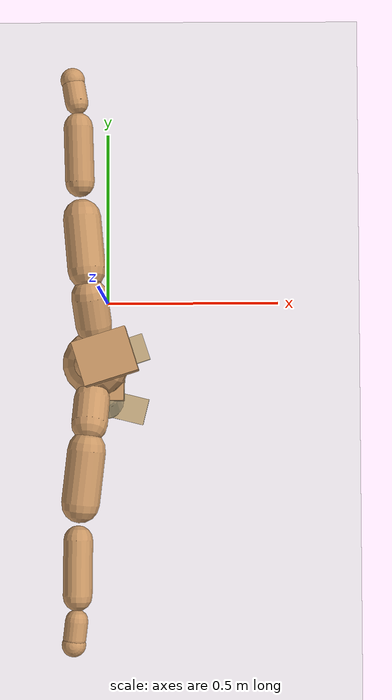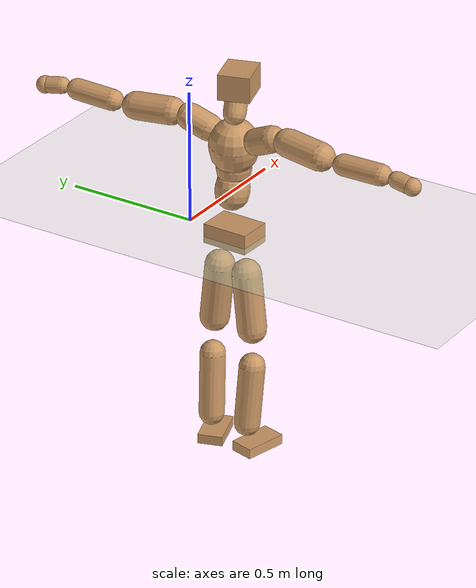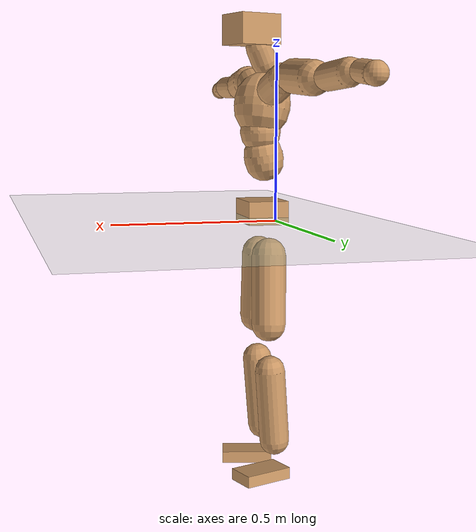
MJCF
<mujoco model="humanoid">
  <compiler coordinate="local" angle="radian"/>
  <default>
    <joint damping="0.0" armature="0.01" stiffness="0.0" limited="true"/>
    <geom conaffinity="1" condim="3" contype="7" margin="0.001" rgba="0.8 0.6 .4 1"/>
  </default>
  <asset>
    <texture type="skybox" builtin="gradient" rgb1=".4 .5 .6" rgb2="0 0 0" width="100" height="100"/>
    <texture builtin="flat" height="1278" mark="cross" markrgb="1 1 1" name="texgeom" random="0.01" rgb1="0.8 0.6 0.4" rgb2="0.8 0.6 0.4" type="cube" width="127"/>
    <texture builtin="checker" height="100" name="texplane" rgb1="0 0 0" rgb2="0.8 0.8 0.8" type="2d" width="100"/>
    <material name="MatPlane" reflectance="0.5" shininess="1" specular="1" texrepeat="60 60" texture="texplane"/>
    <material name="geom" texture="texgeom" texuniform="true"/>
  </asset>
  <worldbody>
    <light cutoff="100" diffuse="1 1 1" dir="-0 0 -1.3" directional="true" exponent="1" pos="0 0 1.3" specular=".1 .1 .1"/>
    <geom conaffinity="1" condim="3" name="floor" pos="0 0 0" rgba="0.8 0.9 0.8 1" size="100 100 .2" type="plane" material="MatPlane"/>
    <body name="Pelvis" pos="-0.0049 -0.1975 0.0191">
      <freejoint name="Pelvis"/>
      <geom type="box" contype="1" conaffinity="1" density="500" pos="-0.0111 0.0003 -0.0075" size="0.064 0.0878 0.0371" quat="0.9999 0.0000 0.0000 -0.0133" name="Pelvis"/>
      <body name="L_Hip" pos="-0.0216 0.0468 -0.0708">
        <joint name="L_Hip_x" type="hinge" pos="0 0 0" axis="1 0 0" stiffness="800" damping="80" armature="0.02" range="-180.0000 180.0000"/>
        <joint name="L_Hip_y" type="hinge" pos="0 0 0" axis="0 1 0" stiffness="800" damping="80" armature="0.02" range="-180.0000 180.0000"/>
        <joint name="L_Hip_z" type="hinge" pos="0 0 0" axis="0 0 1" stiffness="800" damping="80" armature="0.02" range="-180.0000 180.0000"/>
        <geom type="capsule" contype="1" conaffinity="1" density="500" fromto="0.0025 0.0089 -0.0732 0.0098 0.0357 -0.2929" size="0.0549" name="L_Hip"/>
        <body name="L_Knee" pos="0.0123 0.0446 -0.3661">
          <joint name="L_Knee_x" type="hinge" pos="0 0 0" axis="1 0 0" stiffness="800" damping="80" armature="0.02" range="-180.0000 180.0000"/>
          <joint name="L_Knee_y" type="hinge" pos="0 0 0" axis="0 1 0" stiffness="800" damping="80" armature="0.02" range="-180.0000 180.0000"/>
          <joint name="L_Knee_z" type="hinge" pos="0 0 0" axis="0 0 1" stiffness="800" damping="80" armature="0.02" range="-180.0000 180.0000"/>
          <geom type="capsule" contype="1" conaffinity="1" density="500" fromto="-0.0060 -0.0023 -0.0777 -0.0241 -0.0092 -0.3108" size="0.0478" name="L_Knee"/>
          <body name="L_Ankle" pos="-0.0301 -0.0115 -0.3885">
            <joint name="L_Ankle_x" type="hinge" pos="0 0 0" axis="1 0 0" stiffness="800" damping="80" armature="0.02" range="-180.0000 180.0000"/>
            <joint name="L_Ankle_y" type="hinge" pos="0 0 0" axis="0 1 0" stiffness="800" damping="80" armature="0.02" range="-180.0000 180.0000"/>
            <joint name="L_Ankle_z" type="hinge" pos="0 0 0" axis="0 0 1" stiffness="800" damping="80" armature="0.02" range="-180.0000 180.0000"/>
            <geom type="box" contype="1" conaffinity="1" density="500" pos="0.0551 0.0183 -0.0269" size="0.0805 0.0467 0.0185" quat="0.9872 0.0000 0.0000 0.1592" name="L_Ankle"/>
            <body name="L_Toe" pos="0.1102 0.0365 -0.0538">
              <joint name="L_Toe_x" type="hinge" pos="0 0 0" axis="1 0 0" stiffness="500" damping="50" armature="0.02" range="-180.0000 180.0000"/>
              <joint name="L_Toe_y" type="hinge" pos="0 0 0" axis="0 1 0" stiffness="500" damping="50" armature="0.02" range="-180.0000 180.0000"/>
              <joint name="L_Toe_z" type="hinge" pos="0 0 0" axis="0 0 1" stiffness="500" damping="50" armature="0.02" range="-180.0000 180.0000"/>
              <geom type="box" contype="1" conaffinity="1" density="500" pos="0.0000 0.0000 0.0262" size="0.001 0.0024 0.0009" quat="0.9864 0.0000 0.0000 0.1645" name="L_Toe"/>
            </body>
          </body>
        </body>
      </body>
      <body name="R_Hip" pos="-0.0185 -0.0487 -0.0782">
        <joint name="R_Hip_x" type="hinge" pos="0 0 0" axis="1 0 0" stiffness="800" damping="80" armature="0.02" range="-180.0000 180.0000"/>
        <joint name="R_Hip_y" type="hinge" pos="0 0 0" axis="0 1 0" stiffness="800" damping="80" armature="0.02" range="-180.0000 180.0000"/>
        <joint name="R_Hip_z" type="hinge" pos="0 0 0" axis="0 0 1" stiffness="800" damping="80" armature="0.02" range="-180.0000 180.0000"/>
        <geom type="capsule" contype="1" conaffinity="1" density="500" fromto="-0.0001 -0.0080 -0.0718 -0.0003 -0.0319 -0.2873" size="0.0539" name="R_Hip"/>
        <body name="R_Knee" pos="-0.0004 -0.0399 -0.3591">
          <joint name="R_Knee_x" type="hinge" pos="0 0 0" axis="1 0 0" stiffness="800" damping="80" armature="0.02" range="-180.0000 180.0000"/>
          <joint name="R_Knee_y" type="hinge" pos="0 0 0" axis="0 1 0" stiffness="800" damping="80" armature="0.02" range="-180.0000 180.0000"/>
          <joint name="R_Knee_z" type="hinge" pos="0 0 0" axis="0 0 1" stiffness="800" damping="80" armature="0.02" range="-180.0000 180.0000"/>
          <geom type="capsule" contype="1" conaffinity="1" density="500" fromto="-0.0054 0.0035 -0.0761 -0.0217 0.0138 -0.3045" size="0.0481" name="R_Knee"/>
          <body name="R_Ankle" pos="-0.0271 0.0173 -0.3806">
            <joint name="R_Ankle_x" type="hinge" pos="0 0 0" axis="1 0 0" stiffness="800" damping="80" armature="0.02" range="-180.0000 180.0000"/>
            <joint name="R_Ankle_y" type="hinge" pos="0 0 0" axis="0 1 0" stiffness="800" damping="80" armature="0.02" range="-180.0000 180.0000"/>
            <joint name="R_Ankle_z" type="hinge" pos="0 0 0" axis="0 0 1" stiffness="800" damping="80" armature="0.02" range="-180.0000 180.0000"/>
            <geom type="box" contype="1" conaffinity="1" density="500" pos="0.0586 -0.0145 -0.0282" size="0.0814 0.0452 0.0192" quat="0.9927 0.0000 0.0000 -0.1208" name="R_Ankle"/>
            <body name="R_Toe" pos="0.1172 -0.029 -0.0564">
              <joint name="R_Toe_x" type="hinge" pos="0 0 0" axis="1 0 0" stiffness="500" damping="50" armature="0.02" range="-180.0000 180.0000"/>
              <joint name="R_Toe_y" type="hinge" pos="0 0 0" axis="0 1 0" stiffness="500" damping="50" armature="0.02" range="-180.0000 180.0000"/>
              <joint name="R_Toe_z" type="hinge" pos="0 0 0" axis="0 0 1" stiffness="500" damping="50" armature="0.02" range="-180.0000 180.0000"/>
              <geom type="box" contype="1" conaffinity="1" density="500" pos="0.0000 0.0000 0.0293" size="0.0009 0.0023 0.001" quat="0.9938 0.0000 0.0000 -0.1110" name="R_Toe"/>
            </body>
          </body>
        </body>
      </body>
      <body name="Torso" pos="-0.0265 0.0037 0.1037">
        <joint name="Torso_x" type="hinge" pos="0 0 0" axis="1 0 0" stiffness="1000" damping="100" armature="0.02" range="-180.0000 180.0000"/>
        <joint name="Torso_y" type="hinge" pos="0 0 0" axis="0 1 0" stiffness="1000" damping="100" armature="0.02" range="-180.0000 180.0000"/>
        <joint name="Torso_z" type="hinge" pos="0 0 0" axis="0 0 1" stiffness="1000" damping="100" armature="0.02" range="-180.0000 180.0000"/>
        <geom type="capsule" contype="1" conaffinity="1" density="500" fromto="0.0133 0.0020 0.0717 0.0089 0.0013 0.0478" size="0.0625" name="Torso"/>
        <body name="Spine" pos="0.0222 0.0034 0.1195">
          <joint name="Spine_x" type="hinge" pos="0 0 0" axis="1 0 0" stiffness="1000" damping="100" armature="0.02" range="-180.0000 180.0000"/>
          <joint name="Spine_y" type="hinge" pos="0 0 0" axis="0 1 0" stiffness="1000" damping="100" armature="0.02" range="-180.0000 180.0000"/>
          <joint name="Spine_z" type="hinge" pos="0 0 0" axis="0 0 1" stiffness="1000" damping="100" armature="0.02" range="-180.0000 180.0000"/>
          <geom type="capsule" contype="1" conaffinity="1" density="500" fromto="0.0013 -0.0000 0.0285 0.0009 -0.0000 0.0190" size="0.0644" name="Spine"/>
          <body name="Chest" pos="0.0022 0 0.0475">
            <joint name="Chest_x" type="hinge" pos="0 0 0" axis="1 0 0" stiffness="1000" damping="100" armature="0.02" range="-180.0000 180.0000"/>
            <joint name="Chest_y" type="hinge" pos="0 0 0" axis="0 1 0" stiffness="1000" damping="100" armature="0.02" range="-180.0000 180.0000"/>
            <joint name="Chest_z" type="hinge" pos="0 0 0" axis="0 0 1" stiffness="1000" damping="100" armature="0.02" range="-180.0000 180.0000"/>
            <geom type="capsule" contype="1" conaffinity="1" density="500" fromto="-0.0098 -0.0051 0.0738 -0.0065 -0.0034 0.0492" size="0.0895" name="Chest"/>
            <body name="Neck" pos="-0.0249 -0.0153 0.1765">
              <joint name="Neck_x" type="hinge" pos="0 0 0" axis="1 0 0" stiffness="500" damping="50" armature="0.02" range="-180.0000 180.0000"/>
              <joint name="Neck_y" type="hinge" pos="0 0 0" axis="0 1 0" stiffness="500" damping="50" armature="0.02" range="-180.0000 180.0000"/>
              <joint name="Neck_z" type="hinge" pos="0 0 0" axis="0 0 1" stiffness="500" damping="50" armature="0.02" range="-180.0000 180.0000"/>
              <geom type="capsule" contype="1" conaffinity="1" density="500" fromto="0.0071 0.0020 0.0153 0.0285 0.0078 0.0614" size="0.0411" name="Neck"/>
              <body name="Head" pos="0.0357 0.0098 0.0767">
                <joint name="Head_x" type="hinge" pos="0 0 0" axis="1 0 0" stiffness="500" damping="50" armature="0.02" range="-180.0000 180.0000"/>
                <joint name="Head_y" type="hinge" pos="0 0 0" axis="0 1 0" stiffness="500" damping="50" armature="0.02" range="-180.0000 180.0000"/>
                <joint name="Head_z" type="hinge" pos="0 0 0" axis="0 0 1" stiffness="500" damping="50" armature="0.02" range="-180.0000 180.0000"/>
                <geom type="box" contype="1" conaffinity="1" density="500" pos="0.0188 0.0059 0.0394" size="0.0716 0.0587 0.0477" quat="0.9885 0.0000 0.0000 0.1512" name="Head"/>
              </body>
            </body>
            <body name="L_Thorax" pos="-0.0084 0.0715 0.0973">
              <joint name="L_Thorax_x" type="hinge" pos="0 0 0" axis="1 0 0" stiffness="500" damping="50" armature="0.02" range="-180.0000 180.0000"/>
              <joint name="L_Thorax_y" type="hinge" pos="0 0 0" axis="0 1 0" stiffness="500" damping="50" armature="0.02" range="-180.0000 180.0000"/>
              <joint name="L_Thorax_z" type="hinge" pos="0 0 0" axis="0 0 1" stiffness="500" damping="50" armature="0.02" range="-180.0000 180.0000"/>
              <geom type="capsule" contype="1" conaffinity="1" density="500" fromto="-0.0032 0.0248 0.0095 -0.0128 0.0993 0.0379" size="0.0494" name="L_Thorax"/>
              <body name="L_Shoulder" pos="-0.0159 0.1241 0.0473">
                <joint name="L_Shoulder_x" type="hinge" pos="0 0 0" axis="1 0 0" stiffness="500" damping="50" armature="0.02" range="-720.0000 720.0000"/>
                <joint name="L_Shoulder_y" type="hinge" pos="0 0 0" axis="0 1 0" stiffness="500" damping="50" armature="0.02" range="-720.0000 720.0000"/>
                <joint name="L_Shoulder_z" type="hinge" pos="0 0 0" axis="0 0 1" stiffness="500" damping="50" armature="0.02" range="-720.0000 720.0000"/>
                <geom type="capsule" contype="1" conaffinity="1" density="500" fromto="-0.0044 0.0470 -0.0033 -0.0174 0.1879 -0.0132" size="0.0514" name="L_Shoulder"/>
                <body name="L_Elbow" pos="-0.0218 0.2349 -0.0165">
                  <joint name="L_Elbow_x" type="hinge" pos="0 0 0" axis="1 0 0" stiffness="500" damping="50" armature="0.02" range="-720.0000 720.0000"/>
                  <joint name="L_Elbow_y" type="hinge" pos="0 0 0" axis="0 1 0" stiffness="500" damping="50" armature="0.02" range="-720.0000 720.0000"/>
                  <joint name="L_Elbow_z" type="hinge" pos="0 0 0" axis="0 0 1" stiffness="500" damping="50" armature="0.02" range="-720.0000 720.0000"/>
                  <geom type="capsule" contype="1" conaffinity="1" density="500" fromto="-0.0014 0.0496 0.0022 -0.0054 0.1983 0.0090" size="0.0393" name="L_Elbow"/>
                  <body name="L_Wrist" pos="-0.0068 0.2479 0.0112">
                    <joint name="L_Wrist_x" type="hinge" pos="0 0 0" axis="1 0 0" stiffness="300" damping="30" armature="0.02" range="-180.0000 180.0000"/>
                    <joint name="L_Wrist_y" type="hinge" pos="0 0 0" axis="0 1 0" stiffness="300" damping="30" armature="0.02" range="-180.0000 180.0000"/>
                    <joint name="L_Wrist_z" type="hinge" pos="0 0 0" axis="0 0 1" stiffness="300" damping="30" armature="0.02" range="-180.0000 180.0000"/>
                    <geom type="capsule" contype="1" conaffinity="1" density="500" fromto="-0.0029 0.0161 -0.0020 -0.0115 0.0642 -0.0080" size="0.0311" name="L_Wrist"/>
                    <body name="L_Hand" pos="-0.0144 0.0803 -0.01">
                      <joint name="L_Hand_x" type="hinge" pos="0 0 0" axis="1 0 0" stiffness="300" damping="30" armature="0.02" range="-180.0000 180.0000"/>
                      <joint name="L_Hand_y" type="hinge" pos="0 0 0" axis="0 1 0" stiffness="300" damping="30" armature="0.02" range="-180.0000 180.0000"/>
                      <joint name="L_Hand_z" type="hinge" pos="0 0 0" axis="0 0 1" stiffness="300" damping="30" armature="0.02" range="-180.0000 180.0000"/>
                      <geom type="sphere" contype="1" conaffinity="1" density="500" size="0.0328" pos="0.0000 0.0000 0.0000" name="L_Hand"/>
                    </body>
                  </body>
                </body>
              </body>
            </body>
            <body name="R_Thorax" pos="-0.0156 -0.0817 0.0952">
              <joint name="R_Thorax_x" type="hinge" pos="0 0 0" axis="1 0 0" stiffness="500" damping="50" armature="0.02" range="-180.0000 180.0000"/>
              <joint name="R_Thorax_y" type="hinge" pos="0 0 0" axis="0 1 0" stiffness="500" damping="50" armature="0.02" range="-180.0000 180.0000"/>
              <joint name="R_Thorax_z" type="hinge" pos="0 0 0" axis="0 0 1" stiffness="500" damping="50" armature="0.02" range="-180.0000 180.0000"/>
              <geom type="capsule" contype="1" conaffinity="1" density="500" fromto="-0.0015 -0.0221 0.0099 -0.0060 -0.0886 0.0394" size="0.0488" name="R_Thorax"/>
              <body name="R_Shoulder" pos="-0.0075 -0.1107 0.0493">
                <joint name="R_Shoulder_x" type="hinge" pos="0 0 0" axis="1 0 0" stiffness="500" damping="50" armature="0.02" range="-720.0000 720.0000"/>
                <joint name="R_Shoulder_y" type="hinge" pos="0 0 0" axis="0 1 0" stiffness="500" damping="50" armature="0.02" range="-720.0000 720.0000"/>
                <joint name="R_Shoulder_z" type="hinge" pos="0 0 0" axis="0 0 1" stiffness="500" damping="50" armature="0.02" range="-720.0000 720.0000"/>
                <geom type="capsule" contype="1" conaffinity="1" density="500" fromto="-0.0056 -0.0474 -0.0032 -0.0225 -0.1896 -0.0127" size="0.0516" name="R_Shoulder"/>
                <body name="R_Elbow" pos="-0.0281 -0.237 -0.0158">
                  <joint name="R_Elbow_x" type="hinge" pos="0 0 0" axis="1 0 0" stiffness="500" damping="50" armature="0.02" range="-720.0000 720.0000"/>
                  <joint name="R_Elbow_y" type="hinge" pos="0 0 0" axis="0 1 0" stiffness="500" damping="50" armature="0.02" range="-720.0000 720.0000"/>
                  <joint name="R_Elbow_z" type="hinge" pos="0 0 0" axis="0 0 1" stiffness="500" damping="50" armature="0.02" range="-720.0000 720.0000"/>
                  <geom type="capsule" contype="1" conaffinity="1" density="500" fromto="-0.0005 -0.0494 0.0006 -0.0022 -0.1975 0.0025" size="0.0392" name="R_Elbow"/>
                  <body name="R_Wrist" pos="-0.0027 -0.2468 0.0031">
                    <joint name="R_Wrist_x" type="hinge" pos="0 0 0" axis="1 0 0" stiffness="300" damping="30" armature="0.02" range="-180.0000 180.0000"/>
                    <joint name="R_Wrist_y" type="hinge" pos="0 0 0" axis="0 1 0" stiffness="300" damping="30" armature="0.02" range="-180.0000 180.0000"/>
                    <joint name="R_Wrist_z" type="hinge" pos="0 0 0" axis="0 0 1" stiffness="300" damping="30" armature="0.02" range="-180.0000 180.0000"/>
                    <geom type="capsule" contype="1" conaffinity="1" density="500" fromto="-0.0019 -0.0160 -0.0016 -0.0076 -0.0638 -0.0062" size="0.0308" name="R_Wrist"/>
                    <body name="R_Hand" pos="-0.0095 -0.0798 -0.0078">
                      <joint name="R_Hand_x" type="hinge" pos="0 0 0" axis="1 0 0" stiffness="300" damping="30" armature="0.02" range="-180.0000 180.0000"/>
                      <joint name="R_Hand_y" type="hinge" pos="0 0 0" axis="0 1 0" stiffness="300" damping="30" armature="0.02" range="-180.0000 180.0000"/>
                      <joint name="R_Hand_z" type="hinge" pos="0 0 0" axis="0 0 1" stiffness="300" damping="30" armature="0.02" range="-180.0000 180.0000"/>
                      <geom type="sphere" contype="1" conaffinity="1" density="500" size="0.0323" pos="0.0000 0.0000 0.0000" name="R_Hand"/>
                    </body>
                  </body>
                </body>
              </body>
            </body>
          </body>
        </body>
      </body>
    </body>
  </worldbody>
  <actuator>
    <motor name="L_Hip_x" joint="L_Hip_x" gear="500"/>
    <motor name="L_Hip_y" joint="L_Hip_y" gear="500"/>
    <motor name="L_Hip_z" joint="L_Hip_z" gear="500"/>
    <motor name="L_Knee_x" joint="L_Knee_x" gear="500"/>
    <motor name="L_Knee_y" joint="L_Knee_y" gear="500"/>
    <motor name="L_Knee_z" joint="L_Knee_z" gear="500"/>
    <motor name="L_Ankle_x" joint="L_Ankle_x" gear="500"/>
    <motor name="L_Ankle_y" joint="L_Ankle_y" gear="500"/>
    <motor name="L_Ankle_z" joint="L_Ankle_z" gear="500"/>
    <motor name="L_Toe_x" joint="L_Toe_x" gear="500"/>
    <motor name="L_Toe_y" joint="L_Toe_y" gear="500"/>
    <motor name="L_Toe_z" joint="L_Toe_z" gear="500"/>
    <motor name="R_Hip_x" joint="R_Hip_x" gear="500"/>
    <motor name="R_Hip_y" joint="R_Hip_y" gear="500"/>
    <motor name="R_Hip_z" joint="R_Hip_z" gear="500"/>
    <motor name="R_Knee_x" joint="R_Knee_x" gear="500"/>
    <motor name="R_Knee_y" joint="R_Knee_y" gear="500"/>
    <motor name="R_Knee_z" joint="R_Knee_z" gear="500"/>
    <motor name="R_Ankle_x" joint="R_Ankle_x" gear="500"/>
    <motor name="R_Ankle_y" joint="R_Ankle_y" gear="500"/>
    <motor name="R_Ankle_z" joint="R_Ankle_z" gear="500"/>
    <motor name="R_Toe_x" joint="R_Toe_x" gear="500"/>
    <motor name="R_Toe_y" joint="R_Toe_y" gear="500"/>
    <motor name="R_Toe_z" joint="R_Toe_z" gear="500"/>
    <motor name="Torso_x" joint="Torso_x" gear="500"/>
    <motor name="Torso_y" joint="Torso_y" gear="500"/>
    <motor name="Torso_z" joint="Torso_z" gear="500"/>
    <motor name="Spine_x" joint="Spine_x" gear="500"/>
    <motor name="Spine_y" joint="Spine_y" gear="500"/>
    <motor name="Spine_z" joint="Spine_z" gear="500"/>
    <motor name="Chest_x" joint="Chest_x" gear="500"/>
    <motor name="Chest_y" joint="Chest_y" gear="500"/>
    <motor name="Chest_z" joint="Chest_z" gear="500"/>
    <motor name="Neck_x" joint="Neck_x" gear="500"/>
    <motor name="Neck_y" joint="Neck_y" gear="500"/>
    <motor name="Neck_z" joint="Neck_z" gear="500"/>
    <motor name="Head_x" joint="Head_x" gear="500"/>
    <motor name="Head_y" joint="Head_y" gear="500"/>
    <motor name="Head_z" joint="Head_z" gear="500"/>
    <motor name="L_Thorax_x" joint="L_Thorax_x" gear="500"/>
    <motor name="L_Thorax_y" joint="L_Thorax_y" gear="500"/>
    <motor name="L_Thorax_z" joint="L_Thorax_z" gear="500"/>
    <motor name="L_Shoulder_x" joint="L_Shoulder_x" gear="500"/>
    <motor name="L_Shoulder_y" joint="L_Shoulder_y" gear="500"/>
    <motor name="L_Shoulder_z" joint="L_Shoulder_z" gear="500"/>
    <motor name="L_Elbow_x" joint="L_Elbow_x" gear="500"/>
    <motor name="L_Elbow_y" joint="L_Elbow_y" gear="500"/>
    <motor name="L_Elbow_z" joint="L_Elbow_z" gear="500"/>
    <motor name="L_Wrist_x" joint="L_Wrist_x" gear="500"/>
    <motor name="L_Wrist_y" joint="L_Wrist_y" gear="500"/>
    <motor name="L_Wrist_z" joint="L_Wrist_z" gear="500"/>
    <motor name="L_Hand_x" joint="L_Hand_x" gear="500"/>
    <motor name="L_Hand_y" joint="L_Hand_y" gear="500"/>
    <motor name="L_Hand_z" joint="L_Hand_z" gear="500"/>
    <motor name="R_Thorax_x" joint="R_Thorax_x" gear="500"/>
    <motor name="R_Thorax_y" joint="R_Thorax_y" gear="500"/>
    <motor name="R_Thorax_z" joint="R_Thorax_z" gear="500"/>
    <motor name="R_Shoulder_x" joint="R_Shoulder_x" gear="500"/>
    <motor name="R_Shoulder_y" joint="R_Shoulder_y" gear="500"/>
    <motor name="R_Shoulder_z" joint="R_Shoulder_z" gear="500"/>
    <motor name="R_Elbow_x" joint="R_Elbow_x" gear="500"/>
    <motor name="R_Elbow_y" joint="R_Elbow_y" gear="500"/>
    <motor name="R_Elbow_z" joint="R_Elbow_z" gear="500"/>
    <motor name="R_Wrist_x" joint="R_Wrist_x" gear="500"/>
    <motor name="R_Wrist_y" joint="R_Wrist_y" gear="500"/>
    <motor name="R_Wrist_z" joint="R_Wrist_z" gear="500"/>
    <motor name="R_Hand_x" joint="R_Hand_x" gear="500"/>
    <motor name="R_Hand_y" joint="R_Hand_y" gear="500"/>
    <motor name="R_Hand_z" joint="R_Hand_z" gear="500"/>
  </actuator>
  <contact>
    <exclude body1="Torso" body2="Chest"/>
    <exclude body1="Head" body2="Chest"/>
    <exclude body1="R_Knee" body2="R_Toe"/>
    <exclude body1="R_Knee" body2="L_Ankle"/>
    <exclude body1="R_Knee" body2="L_Toe"/>
    <exclude body1="L_Knee" body2="L_Toe"/>
    <exclude body1="L_Knee" body2="R_Ankle"/>
    <exclude body1="L_Knee" body2="R_Toe"/>
    <exclude body1="L_Shoulder" body2="Chest"/>
    <exclude body1="R_Shoulder" body2="Chest"/>
  </contact>
  <sensor/>
  <size njmax="700" nconmax="700"/>
</mujoco>
